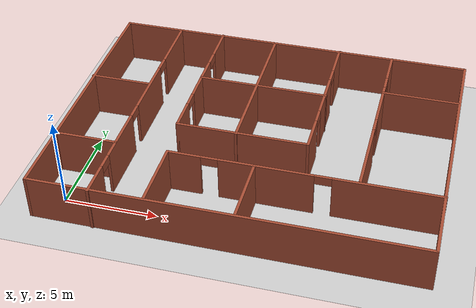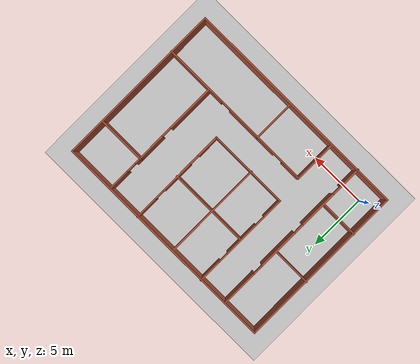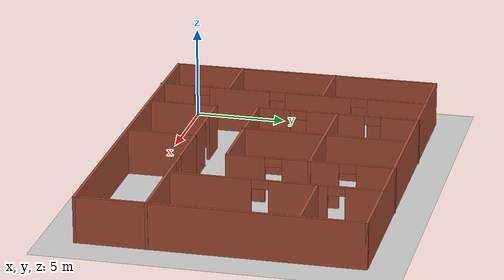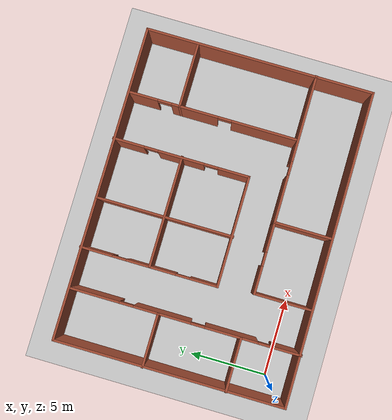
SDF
<sdf version="1.6">
 <world name="default">
  <light name="sun" type="directional">
   <pose>0 0 10 0 -0 0</pose>
   <diffuse>0.8 0.8 0.8 1</diffuse>
   <specular>0.2 0.2 0.2 1</specular>
   <attenuation>
    <range>1000</range>
    <constant>0.9</constant>
    <linear>0.01</linear>
    <quadratic>0.001</quadratic>
   </attenuation>
   <direction>-0.5 0.1 -0.9</direction>
  </light>
  <model name="ground_plane">
   <static>1</static>
   <link name="link">
    <collision name="collision">
     <geometry><plane><normal>0 0 1</normal><size>100 100</size></plane></geometry>
     <surface>
      <contact><collide_bitmask>65535</collide_bitmask></contact>
      <friction><ode><mu>100</mu><mu2>50</mu2></ode></friction>
     </surface>
    </collision>
    <visual name="visual">
     <cast_shadows>0</cast_shadows>
     <geometry><plane><normal>0 0 1</normal><size>100 100</size></plane></geometry>
     <material>
      <script><uri>file://media/materials/scripts/gazebo.material</uri><name>Gazebo/Grey</name></script>
     </material>
    </visual>
   </link>
  </model>
  <gravity>0 0 -9.8</gravity>
  <magnetic_field>6e-06 2.3e-05 -4.2e-05</magnetic_field>
  <atmosphere type="adiabatic"/>
  <physics name="default_physics" default="0" type="ode">
   <max_step_size>0.001</max_step_size>
   <real_time_factor>1</real_time_factor>
   <real_time_update_rate>1000</real_time_update_rate>
  </physics>
  <scene><ambient>0.4 0.4 0.4 1</ambient><background>0.7 0.7 0.7 1</background><shadows>1</shadows></scene>
  <spherical_coordinates>
   <surface_model>EARTH_WGS84</surface_model>
   <latitude_deg>0</latitude_deg>
   <longitude_deg>0</longitude_deg>
   <elevation>0</elevation>
   <heading_deg>0</heading_deg>
  </spherical_coordinates>
  <model name="oficina_2">
   <pose>8.94313 5.9775 0 0 -0 0</pose>
   <link name="Wall_20">
    <collision name="Wall_20_Collision">
     <geometry><box><size>20.5 0.15 2.5</size></box></geometry>
     <pose>0 0 1.25 0 -0 0</pose>
    </collision>
    <visual name="Wall_20_Visual">
     <pose>0 0 1.25 0 -0 0</pose>
     <geometry><box><size>20.5 0.15 2.5</size></box></geometry>
     <material>
      <script><uri>file://media/materials/scripts/gazebo.material</uri><name>Gazebo/Bricks</name></script>
      <ambient>1 1 1 1</ambient>
     </material>
     <meta><layer>0</layer></meta>
    </visual>
    <pose>0.008828 7.43008 0 0 -0 0</pose>
   </link>
   <link name="Wall_21">
    <collision name="Wall_21_Collision">
     <geometry><box><size>15 0.15 2.5</size></box></geometry>
     <pose>0 0 1.25 0 -0 0</pose>
    </collision>
    <visual name="Wall_21_Visual">
     <pose>0 0 1.25 0 -0 0</pose>
     <geometry><box><size>15 0.15 2.5</size></box></geometry>
     <material>
      <script><uri>file://media/materials/scripts/gazebo.material</uri><name>Gazebo/Bricks</name></script>
      <ambient>1 1 1 1</ambient>
     </material>
     <meta><layer>0</layer></meta>
    </visual>
    <pose>10.1838 0.005081 0 0 0 -1.5708</pose>
   </link>
   <link name="Wall_22">
    <collision name="Wall_22_Collision">
     <geometry><box><size>20.5 0.15 2.5</size></box></geometry>
     <pose>0 0 1.25 0 -0 0</pose>
    </collision>
    <visual name="Wall_22_Visual">
     <pose>0 0 1.25 0 -0 0</pose>
     <geometry><box><size>20.5 0.15 2.5</size></box></geometry>
     <material>
      <script><uri>file://media/materials/scripts/gazebo.material</uri><name>Gazebo/Bricks</name></script>
      <ambient>1 1 1 1</ambient>
     </material>
     <meta><layer>0</layer></meta>
    </visual>
    <pose>0.008828 -7.41992 0 0 -0 3.14159</pose>
   </link>
   <link name="Wall_23">
    <collision name="Wall_23_Collision">
     <geometry><box><size>15 0.15 2.5</size></box></geometry>
     <pose>0 0 1.25 0 -0 0</pose>
    </collision>
    <visual name="Wall_23_Visual">
     <pose>0 0 1.25 0 -0 0</pose>
     <geometry><box><size>15 0.15 2.5</size></box></geometry>
     <material>
      <script><uri>file://media/materials/scripts/gazebo.material</uri><name>Gazebo/Bricks</name></script>
      <ambient>1 1 1 1</ambient>
     </material>
     <meta><layer>0</layer></meta>
    </visual>
    <pose>-10.1662 0.005081 0 0 -0 1.5708</pose>
   </link>
   <link name="Wall_33">
    <collision name="Wall_33_Collision">
     <geometry><box><size>3.75 0.15 2.5</size></box></geometry>
     <pose>0 0 1.25 0 -0 0</pose>
    </collision>
    <visual name="Wall_33_Visual">
     <pose>0 0 1.25 0 -0 0</pose>
     <geometry><box><size>3.75 0.15 2.5</size></box></geometry>
     <material>
      <script><uri>file://media/materials/scripts/gazebo.material</uri><name>Gazebo/Bricks</name></script>
      <ambient>1 1 1 1</ambient>
     </material>
     <meta><layer>0</layer></meta>
    </visual>
    <pose>0.604835 -5.48824 0 0 0 -1.5708</pose>
   </link>
   <link name="Wall_42">
    <collision name="Wall_42_Collision">
     <geometry><box><size>4.25 0.15 2.5</size></box></geometry>
     <pose>0 0 1.25 0 -0 0</pose>
    </collision>
    <visual name="Wall_42_Visual">
     <pose>0 0 1.25 0 -0 0</pose>
     <geometry><box><size>4.25 0.15 2.5</size></box></geometry>
     <material>
      <script><uri>file://media/materials/scripts/gazebo.material</uri><name>Gazebo/Bricks</name></script>
      <ambient>1 1 1 1</ambient>
     </material>
     <meta><layer>0</layer></meta>
    </visual>
    <pose>8.03007 4.07215 0 0 -0 3.14159</pose>
   </link>
   <link name="Wall_52">
    <pose>5.98007 5.74715 0 0 -0 1.5708</pose>
    <visual name="Wall_52_Visual_0">
     <pose>-1.44334 0 1.25 0 -0 0</pose>
     <geometry><box><size>0.613315 0.15 2.5</size></box></geometry>
     <material>
      <script><uri>file://media/materials/scripts/gazebo.material</uri><name>Gazebo/Bricks</name></script>
      <ambient>1 1 1 1</ambient>
     </material>
     <meta><layer>0</layer></meta>
    </visual>
    <collision name="Wall_52_Collision_0">
     <geometry><box><size>0.613315 0.15 2.5</size></box></geometry>
     <pose>-1.44334 0 1.25 0 -0 0</pose>
    </collision>
    <visual name="Wall_52_Visual_1">
     <pose>0.756658 0 1.25 0 -0 0</pose>
     <geometry><box><size>1.98669 0.15 2.5</size></box></geometry>
     <material>
      <script><uri>file://media/materials/scripts/gazebo.material</uri><name>Gazebo/Bricks</name></script>
      <ambient>1 1 1 1</ambient>
     </material>
     <meta><layer>0</layer></meta>
    </visual>
    <collision name="Wall_52_Collision_1">
     <geometry><box><size>1.98669 0.15 2.5</size></box></geometry>
     <pose>0.756658 0 1.25 0 -0 0</pose>
    </collision>
    <visual name="Wall_52_Visual_2">
     <pose>-0.686685 0 2.25 0 -0 0</pose>
     <geometry><box><size>0.9 0.15 0.5</size></box></geometry>
     <material>
      <script><uri>file://media/materials/scripts/gazebo.material</uri><name>Gazebo/Bricks</name></script>
      <ambient>1 1 1 1</ambient>
     </material>
     <meta><layer>0</layer></meta>
    </visual>
    <collision name="Wall_52_Collision_2">
     <geometry><box><size>0.9 0.15 0.5</size></box></geometry>
     <pose>-0.686685 0 2.25 0 -0 0</pose>
    </collision>
   </link>
   <link name="Wall_54">
    <pose>5.98007 0.272147 0 0 0 -1.5708</pose>
    <visual name="Wall_54_Visual_0">
     <pose>-2.58032 0 1.25 0 -0 0</pose>
     <geometry><box><size>2.58936 0.15 2.5</size></box></geometry>
     <material>
      <script><uri>file://media/materials/scripts/gazebo.material</uri><name>Gazebo/Bricks</name></script>
      <ambient>1 1 1 1</ambient>
     </material>
     <meta><layer>0</layer></meta>
    </visual>
    <collision name="Wall_54_Collision_0">
     <geometry><box><size>2.58936 0.15 2.5</size></box></geometry>
     <pose>-2.58032 0 1.25 0 -0 0</pose>
    </collision>
    <visual name="Wall_54_Visual_1">
     <pose>1.74468 0 1.25 0 -0 0</pose>
     <geometry><box><size>4.26063 0.15 2.5</size></box></geometry>
     <material>
      <script><uri>file://media/materials/scripts/gazebo.material</uri><name>Gazebo/Bricks</name></script>
      <ambient>1 1 1 1</ambient>
     </material>
     <meta><layer>0</layer></meta>
    </visual>
    <collision name="Wall_54_Collision_1">
     <geometry><box><size>4.26063 0.15 2.5</size></box></geometry>
     <pose>1.74468 0 1.25 0 -0 0</pose>
    </collision>
    <visual name="Wall_54_Visual_2">
     <pose>-0.835635 0 2.25 0 -0 0</pose>
     <geometry><box><size>0.9 0.15 0.5</size></box></geometry>
     <material>
      <script><uri>file://media/materials/scripts/gazebo.material</uri><name>Gazebo/Bricks</name></script>
      <ambient>1 1 1 1</ambient>
     </material>
     <meta><layer>0</layer></meta>
    </visual>
    <collision name="Wall_54_Collision_2">
     <geometry><box><size>0.9 0.15 0.5</size></box></geometry>
     <pose>-0.835635 0 2.25 0 -0 0</pose>
    </collision>
   </link>
   <link name="Wall_59">
    <pose>-6.83247 -0.051586 0 0 0 -1.5708</pose>
    <visual name="Wall_59_Visual_0">
     <pose>-5.86791 0 1.25 0 -0 0</pose>
     <geometry><box><size>3.26418 0.15 2.5</size></box></geometry>
     <material>
      <script><uri>file://media/materials/scripts/gazebo.material</uri><name>Gazebo/Bricks</name></script>
      <ambient>1 1 1 1</ambient>
     </material>
     <meta><layer>0</layer></meta>
    </visual>
    <collision name="Wall_59_Collision_0">
     <geometry><box><size>3.26418 0.15 2.5</size></box></geometry>
     <pose>-5.86791 0 1.25 0 -0 0</pose>
    </collision>
    <visual name="Wall_59_Visual_1">
     <pose>-1.48443 0 1.25 0 -0 0</pose>
     <geometry><box><size>3.70279 0.15 2.5</size></box></geometry>
     <material>
      <script><uri>file://media/materials/scripts/gazebo.material</uri><name>Gazebo/Bricks</name></script>
      <ambient>1 1 1 1</ambient>
     </material>
     <meta><layer>0</layer></meta>
    </visual>
    <collision name="Wall_59_Collision_1">
     <geometry><box><size>3.70279 0.15 2.5</size></box></geometry>
     <pose>-1.48443 0 1.25 0 -0 0</pose>
    </collision>
    <visual name="Wall_59_Visual_2">
     <pose>2.97534 0 1.25 0 -0 0</pose>
     <geometry><box><size>3.41674 0.15 2.5</size></box></geometry>
     <material>
      <script><uri>file://media/materials/scripts/gazebo.material</uri><name>Gazebo/Bricks</name></script>
      <ambient>1 1 1 1</ambient>
     </material>
     <meta><layer>0</layer></meta>
    </visual>
    <collision name="Wall_59_Collision_2">
     <geometry><box><size>3.41674 0.15 2.5</size></box></geometry>
     <pose>2.97534 0 1.25 0 -0 0</pose>
    </collision>
    <visual name="Wall_59_Visual_3">
     <pose>6.54186 0 1.25 0 -0 0</pose>
     <geometry><box><size>1.91629 0.15 2.5</size></box></geometry>
     <material>
      <script><uri>file://media/materials/scripts/gazebo.material</uri><name>Gazebo/Bricks</name></script>
      <ambient>1 1 1 1</ambient>
     </material>
     <meta><layer>0</layer></meta>
    </visual>
    <collision name="Wall_59_Collision_3">
     <geometry><box><size>1.91629 0.15 2.5</size></box></geometry>
     <pose>6.54186 0 1.25 0 -0 0</pose>
    </collision>
    <visual name="Wall_59_Visual_4">
     <pose>-3.78582 0 2.25 0 -0 0</pose>
     <geometry><box><size>0.9 0.15 0.5</size></box></geometry>
     <material>
      <script><uri>file://media/materials/scripts/gazebo.material</uri><name>Gazebo/Bricks</name></script>
      <ambient>1 1 1 1</ambient>
     </material>
     <meta><layer>0</layer></meta>
    </visual>
    <collision name="Wall_59_Collision_4">
     <geometry><box><size>0.9 0.15 0.5</size></box></geometry>
     <pose>-3.78582 0 2.25 0 -0 0</pose>
    </collision>
    <visual name="Wall_59_Visual_5">
     <pose>0.816971 0 2.25 0 -0 0</pose>
     <geometry><box><size>0.9 0.15 0.5</size></box></geometry>
     <material>
      <script><uri>file://media/materials/scripts/gazebo.material</uri><name>Gazebo/Bricks</name></script>
      <ambient>1 1 1 1</ambient>
     </material>
     <meta><layer>0</layer></meta>
    </visual>
    <collision name="Wall_59_Collision_5">
     <geometry><box><size>0.9 0.15 0.5</size></box></geometry>
     <pose>0.816971 0 2.25 0 -0 0</pose>
    </collision>
    <visual name="Wall_59_Visual_6">
     <pose>5.13371 0 2.25 0 -0 0</pose>
     <geometry><box><size>0.9 0.15 0.5</size></box></geometry>
     <material>
      <script><uri>file://media/materials/scripts/gazebo.material</uri><name>Gazebo/Bricks</name></script>
      <ambient>1 1 1 1</ambient>
     </material>
     <meta><layer>0</layer></meta>
    </visual>
    <collision name="Wall_59_Collision_6">
     <geometry><box><size>0.9 0.15 0.5</size></box></geometry>
     <pose>5.13371 0 2.25 0 -0 0</pose>
    </collision>
   </link>
   <link name="Wall_61">
    <pose>-4.21876 3.05159 0 0 0 -1.5708</pose>
    <visual name="Wall_61_Visual_0">
     <pose>-3.43913 0 1.25 0 -0 0</pose>
     <geometry><box><size>2.12174 0.15 2.5</size></box></geometry>
     <material>
      <script><uri>file://media/materials/scripts/gazebo.material</uri><name>Gazebo/Bricks</name></script>
      <ambient>1 1 1 1</ambient>
     </material>
     <meta><layer>0</layer></meta>
    </visual>
    <collision name="Wall_61_Collision_0">
     <geometry><box><size>2.12174 0.15 2.5</size></box></geometry>
     <pose>-3.43913 0 1.25 0 -0 0</pose>
    </collision>
    <visual name="Wall_61_Visual_1">
     <pose>0.118181 0 1.25 0 -0 0</pose>
     <geometry><box><size>3.19288 0.15 2.5</size></box></geometry>
     <material>
      <script><uri>file://media/materials/scripts/gazebo.material</uri><name>Gazebo/Bricks</name></script>
      <ambient>1 1 1 1</ambient>
     </material>
     <meta><layer>0</layer></meta>
    </visual>
    <collision name="Wall_61_Collision_1">
     <geometry><box><size>3.19288 0.15 2.5</size></box></geometry>
     <pose>0.118181 0 1.25 0 -0 0</pose>
    </collision>
    <visual name="Wall_61_Visual_2">
     <pose>3.55731 0 1.25 0 -0 0</pose>
     <geometry><box><size>1.88538 0.15 2.5</size></box></geometry>
     <material>
      <script><uri>file://media/materials/scripts/gazebo.material</uri><name>Gazebo/Bricks</name></script>
      <ambient>1 1 1 1</ambient>
     </material>
     <meta><layer>0</layer></meta>
    </visual>
    <collision name="Wall_61_Collision_2">
     <geometry><box><size>1.88538 0.15 2.5</size></box></geometry>
     <pose>3.55731 0 1.25 0 -0 0</pose>
    </collision>
    <visual name="Wall_61_Visual_3">
     <pose>-1.92826 0 2.25 0 -0 0</pose>
     <geometry><box><size>0.9 0.15 0.5</size></box></geometry>
     <material>
      <script><uri>file://media/materials/scripts/gazebo.material</uri><name>Gazebo/Bricks</name></script>
      <ambient>1 1 1 1</ambient>
     </material>
     <meta><layer>0</layer></meta>
    </visual>
    <collision name="Wall_61_Collision_3">
     <geometry><box><size>0.9 0.15 0.5</size></box></geometry>
     <pose>-1.92826 0 2.25 0 -0 0</pose>
    </collision>
    <visual name="Wall_61_Visual_4">
     <pose>2.16462 0 2.25 0 -0 0</pose>
     <geometry><box><size>0.9 0.15 0.5</size></box></geometry>
     <material>
      <script><uri>file://media/materials/scripts/gazebo.material</uri><name>Gazebo/Bricks</name></script>
      <ambient>1 1 1 1</ambient>
     </material>
     <meta><layer>0</layer></meta>
    </visual>
    <collision name="Wall_61_Collision_4">
     <geometry><box><size>0.9 0.15 0.5</size></box></geometry>
     <pose>2.16462 0 2.25 0 -0 0</pose>
    </collision>
   </link>
   <link name="Wall_63">
    <collision name="Wall_63_Collision">
     <geometry><box><size>7.25 0.15 2.5</size></box></geometry>
     <pose>0 0 1.25 0 -0 0</pose>
    </collision>
    <visual name="Wall_63_Visual">
     <pose>0 0 1.25 0 -0 0</pose>
     <geometry><box><size>7.25 0.15 2.5</size></box></geometry>
     <material>
      <script><uri>file://media/materials/scripts/gazebo.material</uri><name>Gazebo/Bricks</name></script>
      <ambient>1 1 1 1</ambient>
     </material>
     <meta><layer>0</layer></meta>
    </visual>
    <pose>-0.668759 -1.37341 0 0 -0 0</pose>
   </link>
   <link name="Wall_64">
    <pose>2.88124 3.05159 0 0 -0 1.5708</pose>
    <visual name="Wall_64_Visual_0">
     <pose>-3.44425 0 1.25 0 -0 0</pose>
     <geometry><box><size>2.11151 0.15 2.5</size></box></geometry>
     <material>
      <script><uri>file://media/materials/scripts/gazebo.material</uri><name>Gazebo/Bricks</name></script>
      <ambient>1 1 1 1</ambient>
     </material>
     <meta><layer>0</layer></meta>
    </visual>
    <collision name="Wall_64_Collision_0">
     <geometry><box><size>2.11151 0.15 2.5</size></box></geometry>
     <pose>-3.44425 0 1.25 0 -0 0</pose>
    </collision>
    <visual name="Wall_64_Visual_1">
     <pose>0.017494 0 1.25 0 -0 0</pose>
     <geometry><box><size>3.01198 0.15 2.5</size></box></geometry>
     <material>
      <script><uri>file://media/materials/scripts/gazebo.material</uri><name>Gazebo/Bricks</name></script>
      <ambient>1 1 1 1</ambient>
     </material>
     <meta><layer>0</layer></meta>
    </visual>
    <collision name="Wall_64_Collision_1">
     <geometry><box><size>3.01198 0.15 2.5</size></box></geometry>
     <pose>0.017494 0 1.25 0 -0 0</pose>
    </collision>
    <visual name="Wall_64_Visual_2">
     <pose>3.46174 0 1.25 0 -0 0</pose>
     <geometry><box><size>2.07652 0.15 2.5</size></box></geometry>
     <material>
      <script><uri>file://media/materials/scripts/gazebo.material</uri><name>Gazebo/Bricks</name></script>
      <ambient>1 1 1 1</ambient>
     </material>
     <meta><layer>0</layer></meta>
    </visual>
    <collision name="Wall_64_Collision_2">
     <geometry><box><size>2.07652 0.15 2.5</size></box></geometry>
     <pose>3.46174 0 1.25 0 -0 0</pose>
    </collision>
    <visual name="Wall_64_Visual_3">
     <pose>-1.9385 0 2.25 0 -0 0</pose>
     <geometry><box><size>0.9 0.15 0.5</size></box></geometry>
     <material>
      <script><uri>file://media/materials/scripts/gazebo.material</uri><name>Gazebo/Bricks</name></script>
      <ambient>1 1 1 1</ambient>
     </material>
     <meta><layer>0</layer></meta>
    </visual>
    <collision name="Wall_64_Collision_3">
     <geometry><box><size>0.9 0.15 0.5</size></box></geometry>
     <pose>-1.9385 0 2.25 0 -0 0</pose>
    </collision>
    <visual name="Wall_64_Visual_4">
     <pose>1.97348 0 2.25 0 -0 0</pose>
     <geometry><box><size>0.9 0.15 0.5</size></box></geometry>
     <material>
      <script><uri>file://media/materials/scripts/gazebo.material</uri><name>Gazebo/Bricks</name></script>
      <ambient>1 1 1 1</ambient>
     </material>
     <meta><layer>0</layer></meta>
    </visual>
    <collision name="Wall_64_Collision_4">
     <geometry><box><size>0.9 0.15 0.5</size></box></geometry>
     <pose>1.97348 0 2.25 0 -0 0</pose>
    </collision>
   </link>
   <link name="Wall_66">
    <collision name="Wall_66_Collision">
     <geometry><box><size>9 0.15 2.5</size></box></geometry>
     <pose>0 0 1.25 0 -0 0</pose>
    </collision>
    <visual name="Wall_66_Visual">
     <pose>0 0 1.25 0 -0 0</pose>
     <geometry><box><size>9 0.15 2.5</size></box></geometry>
     <material>
      <script><uri>file://media/materials/scripts/gazebo.material</uri><name>Gazebo/Bricks</name></script>
      <ambient>1 1 1 1</ambient>
     </material>
     <meta><layer>0</layer></meta>
    </visual>
    <pose>-0.986722 2.997 0 0 0 -1.5708</pose>
   </link>
   <link name="Wall_68">
    <collision name="Wall_68_Collision">
     <geometry><box><size>7.25 0.15 2.5</size></box></geometry>
     <pose>0 0 1.25 0 -0 0</pose>
    </collision>
    <visual name="Wall_68_Visual">
     <pose>0 0 1.25 0 -0 0</pose>
     <geometry><box><size>7.25 0.15 2.5</size></box></geometry>
     <material>
      <script><uri>file://media/materials/scripts/gazebo.material</uri><name>Gazebo/Bricks</name></script>
      <ambient>1 1 1 1</ambient>
     </material>
     <meta><layer>0</layer></meta>
    </visual>
    <pose>-0.625097 3.01255 0 0 -0 0</pose>
   </link>
   <link name="Wall_70">
    <collision name="Wall_70_Collision">
     <geometry><box><size>3.5 0.15 2.5</size></box></geometry>
     <pose>0 0 1.25 0 -0 0</pose>
    </collision>
    <visual name="Wall_70_Visual">
     <pose>0 0 1.25 0 -0 0</pose>
     <geometry><box><size>3.5 0.15 2.5</size></box></geometry>
     <material>
      <script><uri>file://media/materials/scripts/gazebo.material</uri><name>Gazebo/Bricks</name></script>
      <ambient>1 1 1 1</ambient>
     </material>
     <meta><layer>0</layer></meta>
    </visual>
    <pose>-8.52984 1.67988 0 0 -0 3.14159</pose>
   </link>
   <link name="Wall_72">
    <collision name="Wall_72_Collision">
     <geometry><box><size>3.5 0.15 2.5</size></box></geometry>
     <pose>0 0 1.25 0 -0 0</pose>
    </collision>
    <visual name="Wall_72_Visual">
     <pose>0 0 1.25 0 -0 0</pose>
     <geometry><box><size>3.5 0.15 2.5</size></box></geometry>
     <material>
      <script><uri>file://media/materials/scripts/gazebo.material</uri><name>Gazebo/Bricks</name></script>
      <ambient>1 1 1 1</ambient>
     </material>
     <meta><layer>0</layer></meta>
    </visual>
    <pose>-8.52984 -3.65104 0 0 -0 3.14159</pose>
   </link>
   <link name="Wall_74">
    <pose>5.40484 -3.68824 0 0 -0 0</pose>
    <visual name="Wall_74_Visual_0">
     <pose>-3.29239 0 1.25 0 -0 0</pose>
     <geometry><box><size>3.16522 0.15 2.5</size></box></geometry>
     <material>
      <script><uri>file://media/materials/scripts/gazebo.material</uri><name>Gazebo/Bricks</name></script>
      <ambient>1 1 1 1</ambient>
     </material>
     <meta><layer>0</layer></meta>
    </visual>
    <collision name="Wall_74_Collision_0">
     <geometry><box><size>3.16522 0.15 2.5</size></box></geometry>
     <pose>-3.29239 0 1.25 0 -0 0</pose>
    </collision>
    <visual name="Wall_74_Visual_1">
     <pose>2.03261 0 1.25 0 -0 0</pose>
     <geometry><box><size>5.68478 0.15 2.5</size></box></geometry>
     <material>
      <script><uri>file://media/materials/scripts/gazebo.material</uri><name>Gazebo/Bricks</name></script>
      <ambient>1 1 1 1</ambient>
     </material>
     <meta><layer>0</layer></meta>
    </visual>
    <collision name="Wall_74_Collision_1">
     <geometry><box><size>5.68478 0.15 2.5</size></box></geometry>
     <pose>2.03261 0 1.25 0 -0 0</pose>
    </collision>
    <visual name="Wall_74_Visual_2">
     <pose>-1.25978 0 2.25 0 -0 0</pose>
     <geometry><box><size>0.9 0.15 0.5</size></box></geometry>
     <material>
      <script><uri>file://media/materials/scripts/gazebo.material</uri><name>Gazebo/Bricks</name></script>
      <ambient>1 1 1 1</ambient>
     </material>
     <meta><layer>0</layer></meta>
    </visual>
    <collision name="Wall_74_Collision_2">
     <geometry><box><size>0.9 0.15 0.5</size></box></geometry>
     <pose>-1.25978 0 2.25 0 -0 0</pose>
    </collision>
   </link>
   <link name="Wall_76">
    <pose>-1.69517 -3.68824 0 0 -0 3.14159</pose>
    <visual name="Wall_76_Visual_0">
     <pose>-1.3811 0 1.25 0 -0 0</pose>
     <geometry><box><size>1.98779 0.15 2.5</size></box></geometry>
     <material>
      <script><uri>file://media/materials/scripts/gazebo.material</uri><name>Gazebo/Bricks</name></script>
      <ambient>1 1 1 1</ambient>
     </material>
     <meta><layer>0</layer></meta>
    </visual>
    <collision name="Wall_76_Collision_0">
     <geometry><box><size>1.98779 0.15 2.5</size></box></geometry>
     <pose>-1.3811 0 1.25 0 -0 0</pose>
    </collision>
    <visual name="Wall_76_Visual_1">
     <pose>1.4439 0 1.25 0 -0 0</pose>
     <geometry><box><size>1.86221 0.15 2.5</size></box></geometry>
     <material>
      <script><uri>file://media/materials/scripts/gazebo.material</uri><name>Gazebo/Bricks</name></script>
      <ambient>1 1 1 1</ambient>
     </material>
     <meta><layer>0</layer></meta>
    </visual>
    <collision name="Wall_76_Collision_1">
     <geometry><box><size>1.86221 0.15 2.5</size></box></geometry>
     <pose>1.4439 0 1.25 0 -0 0</pose>
    </collision>
    <visual name="Wall_76_Visual_2">
     <pose>0.062793 0 2.25 0 -0 0</pose>
     <geometry><box><size>0.9 0.15 0.5</size></box></geometry>
     <material>
      <script><uri>file://media/materials/scripts/gazebo.material</uri><name>Gazebo/Bricks</name></script>
      <ambient>1 1 1 1</ambient>
     </material>
     <meta><layer>0</layer></meta>
    </visual>
    <collision name="Wall_76_Collision_2">
     <geometry><box><size>0.9 0.15 0.5</size></box></geometry>
     <pose>0.062793 0 2.25 0 -0 0</pose>
    </collision>
   </link>
   <link name="Wall_77">
    <collision name="Wall_77_Collision">
     <geometry><box><size>3.75 0.15 2.5</size></box></geometry>
     <pose>0 0 1.25 0 -0 0</pose>
    </collision>
    <visual name="Wall_77_Visual">
     <pose>0 0 1.25 0 -0 0</pose>
     <geometry><box><size>3.75 0.15 2.5</size></box></geometry>
     <material>
      <script><uri>file://media/materials/scripts/gazebo.material</uri><name>Gazebo/Bricks</name></script>
      <ambient>1 1 1 1</ambient>
     </material>
     <meta><layer>0</layer></meta>
    </visual>
    <pose>-3.99516 -5.48824 0 0 0 -1.5708</pose>
   </link>
   <static>1</static>
  </model>
 </world>
</sdf>
